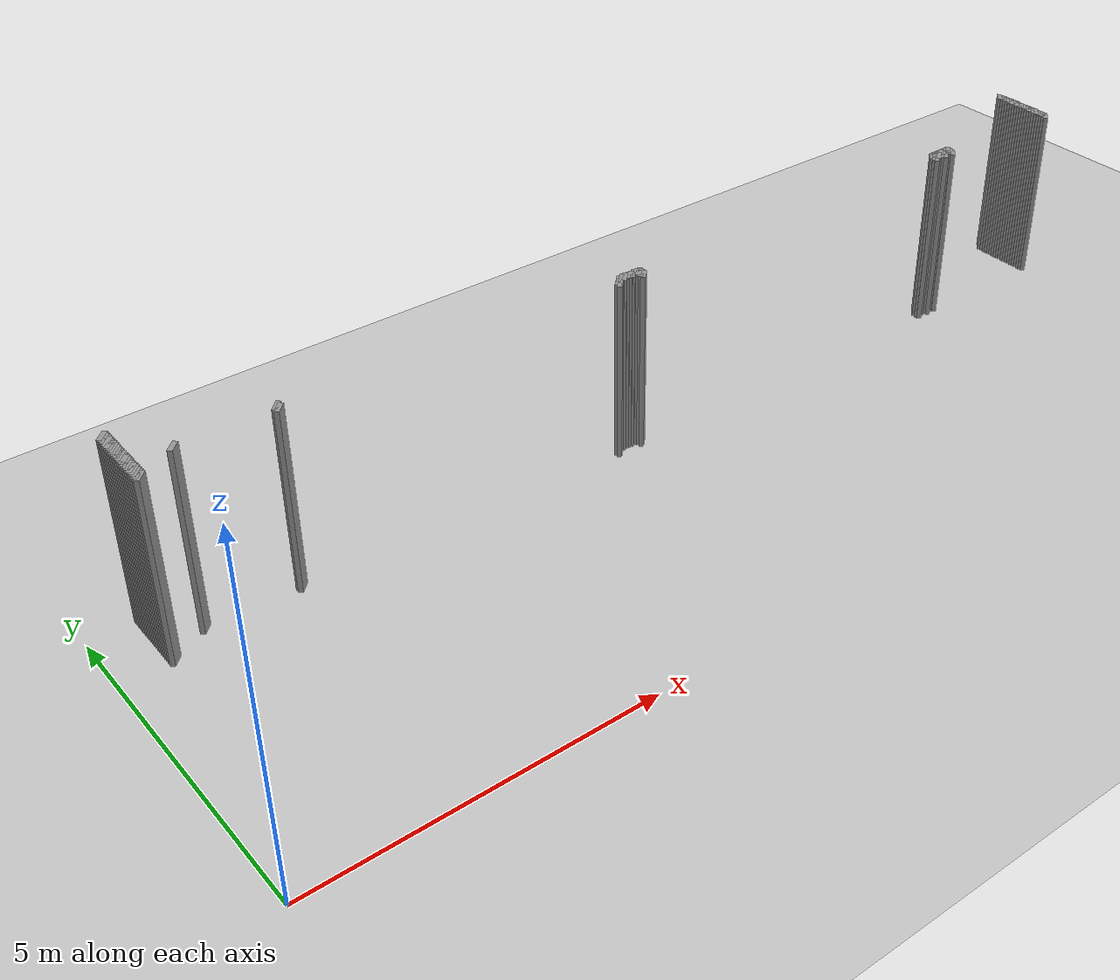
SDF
<sdf version="1.5">
 <world name="default">
  <include><uri>model://ground_plane</uri></include>
  <include><uri>model://sun</uri></include>
  <model name="grey_wall_2000">
   <static>1</static>
   <link name="link">
    <pose>0.75 5.1000000000000005  1.4 0 0 -0.7853981633974549</pose>
    <collision name="collision">
     <geometry><box><size>0.07071067811865529 .2  2.8</size></box></geometry>
    </collision>
    <visual name="visual">
     <cast_shadows>0</cast_shadows>
     <geometry><box><size>0.07071067811865529 .2  2.8</size></box></geometry>
     <material>
      <script>
       <uri>model://grey_wall/materials/scripts</uri>
       <uri>model://grey_wall/materials/textures</uri>
       <name>vrc/grey_wall</name>
      </script>
     </material>
    </visual>
   </link>
  </model>
  <model name="grey_wall_2001">
   <static>1</static>
   <link name="link">
    <pose>16.45 5.1000000000000005  1.4 0 0 -0.7853981633974838</pose>
    <collision name="collision">
     <geometry><box><size>0.07071067811865325 .2  2.8</size></box></geometry>
    </collision>
    <visual name="visual">
     <cast_shadows>0</cast_shadows>
     <geometry><box><size>0.07071067811865325 .2  2.8</size></box></geometry>
     <material>
      <script>
       <uri>model://grey_wall/materials/scripts</uri>
       <uri>model://grey_wall/materials/textures</uri>
       <name>vrc/grey_wall</name>
      </script>
     </material>
    </visual>
   </link>
  </model>
  <model name="grey_wall_2002">
   <static>1</static>
   <link name="link">
    <pose>0.75 5.050000000000001  1.4 0 0 -0.7853981633974549</pose>
    <collision name="collision">
     <geometry><box><size>0.07071067811865529 .2  2.8</size></box></geometry>
    </collision>
    <visual name="visual">
     <cast_shadows>0</cast_shadows>
     <geometry><box><size>0.07071067811865529 .2  2.8</size></box></geometry>
     <material>
      <script>
       <uri>model://grey_wall/materials/scripts</uri>
       <uri>model://grey_wall/materials/textures</uri>
       <name>vrc/grey_wall</name>
      </script>
     </material>
    </visual>
   </link>
  </model>
  <model name="grey_wall_2003">
   <static>1</static>
   <link name="link">
    <pose>16.45 5.050000000000001  1.4 0 0 -0.7853981633974838</pose>
    <collision name="collision">
     <geometry><box><size>0.07071067811865325 .2  2.8</size></box></geometry>
    </collision>
    <visual name="visual">
     <cast_shadows>0</cast_shadows>
     <geometry><box><size>0.07071067811865325 .2  2.8</size></box></geometry>
     <material>
      <script>
       <uri>model://grey_wall/materials/scripts</uri>
       <uri>model://grey_wall/materials/textures</uri>
       <name>vrc/grey_wall</name>
      </script>
     </material>
    </visual>
   </link>
  </model>
  <model name="grey_wall_2004">
   <static>1</static>
   <link name="link">
    <pose>0.75 5.0  1.4 0 0 -0.7853981633974549</pose>
    <collision name="collision">
     <geometry><box><size>0.07071067811865529 .2  2.8</size></box></geometry>
    </collision>
    <visual name="visual">
     <cast_shadows>0</cast_shadows>
     <geometry><box><size>0.07071067811865529 .2  2.8</size></box></geometry>
     <material>
      <script>
       <uri>model://grey_wall/materials/scripts</uri>
       <uri>model://grey_wall/materials/textures</uri>
       <name>vrc/grey_wall</name>
      </script>
     </material>
    </visual>
   </link>
  </model>
  <model name="grey_wall_2005">
   <static>1</static>
   <link name="link">
    <pose>16.45 5.0  1.4 0 0 -0.7853981633974838</pose>
    <collision name="collision">
     <geometry><box><size>0.07071067811865325 .2  2.8</size></box></geometry>
    </collision>
    <visual name="visual">
     <cast_shadows>0</cast_shadows>
     <geometry><box><size>0.07071067811865325 .2  2.8</size></box></geometry>
     <material>
      <script>
       <uri>model://grey_wall/materials/scripts</uri>
       <uri>model://grey_wall/materials/textures</uri>
       <name>vrc/grey_wall</name>
      </script>
     </material>
    </visual>
   </link>
  </model>
  <model name="grey_wall_2006">
   <static>1</static>
   <link name="link">
    <pose>0.75 4.95  1.4 0 0 -0.7853981633974549</pose>
    <collision name="collision">
     <geometry><box><size>0.07071067811865529 .2  2.8</size></box></geometry>
    </collision>
    <visual name="visual">
     <cast_shadows>0</cast_shadows>
     <geometry><box><size>0.07071067811865529 .2  2.8</size></box></geometry>
     <material>
      <script>
       <uri>model://grey_wall/materials/scripts</uri>
       <uri>model://grey_wall/materials/textures</uri>
       <name>vrc/grey_wall</name>
      </script>
     </material>
    </visual>
   </link>
  </model>
  <model name="grey_wall_2007">
   <static>1</static>
   <link name="link">
    <pose>16.45 4.95  1.4 0 0 -0.7853981633974838</pose>
    <collision name="collision">
     <geometry><box><size>0.07071067811865325 .2  2.8</size></box></geometry>
    </collision>
    <visual name="visual">
     <cast_shadows>0</cast_shadows>
     <geometry><box><size>0.07071067811865325 .2  2.8</size></box></geometry>
     <material>
      <script>
       <uri>model://grey_wall/materials/scripts</uri>
       <uri>model://grey_wall/materials/textures</uri>
       <name>vrc/grey_wall</name>
      </script>
     </material>
    </visual>
   </link>
  </model>
  <model name="grey_wall_2008">
   <static>1</static>
   <link name="link">
    <pose>0.75 4.9  1.4 0 0 -0.7853981633974549</pose>
    <collision name="collision">
     <geometry><box><size>0.07071067811865529 .2  2.8</size></box></geometry>
    </collision>
    <visual name="visual">
     <cast_shadows>0</cast_shadows>
     <geometry><box><size>0.07071067811865529 .2  2.8</size></box></geometry>
     <material>
      <script>
       <uri>model://grey_wall/materials/scripts</uri>
       <uri>model://grey_wall/materials/textures</uri>
       <name>vrc/grey_wall</name>
      </script>
     </material>
    </visual>
   </link>
  </model>
  <model name="grey_wall_2009">
   <static>1</static>
   <link name="link">
    <pose>16.45 4.9  1.4 0 0 -0.7853981633974838</pose>
    <collision name="collision">
     <geometry><box><size>0.07071067811865325 .2  2.8</size></box></geometry>
    </collision>
    <visual name="visual">
     <cast_shadows>0</cast_shadows>
     <geometry><box><size>0.07071067811865325 .2  2.8</size></box></geometry>
     <material>
      <script>
       <uri>model://grey_wall/materials/scripts</uri>
       <uri>model://grey_wall/materials/textures</uri>
       <name>vrc/grey_wall</name>
      </script>
     </material>
    </visual>
   </link>
  </model>
  <model name="grey_wall_2010">
   <static>1</static>
   <link name="link">
    <pose>0.75 4.8500000000000005  1.4 0 0 -0.7853981633974549</pose>
    <collision name="collision">
     <geometry><box><size>0.07071067811865529 .2  2.8</size></box></geometry>
    </collision>
    <visual name="visual">
     <cast_shadows>0</cast_shadows>
     <geometry><box><size>0.07071067811865529 .2  2.8</size></box></geometry>
     <material>
      <script>
       <uri>model://grey_wall/materials/scripts</uri>
       <uri>model://grey_wall/materials/textures</uri>
       <name>vrc/grey_wall</name>
      </script>
     </material>
    </visual>
   </link>
  </model>
  <model name="grey_wall_2011">
   <static>1</static>
   <link name="link">
    <pose>16.45 4.8500000000000005  1.4 0 0 -0.7853981633974838</pose>
    <collision name="collision">
     <geometry><box><size>0.07071067811865325 .2  2.8</size></box></geometry>
    </collision>
    <visual name="visual">
     <cast_shadows>0</cast_shadows>
     <geometry><box><size>0.07071067811865325 .2  2.8</size></box></geometry>
     <material>
      <script>
       <uri>model://grey_wall/materials/scripts</uri>
       <uri>model://grey_wall/materials/textures</uri>
       <name>vrc/grey_wall</name>
      </script>
     </material>
    </visual>
   </link>
  </model>
  <model name="grey_wall_2012">
   <static>1</static>
   <link name="link">
    <pose>0.75 4.800000000000001  1.4 0 0 -0.7853981633974549</pose>
    <collision name="collision">
     <geometry><box><size>0.07071067811865529 .2  2.8</size></box></geometry>
    </collision>
    <visual name="visual">
     <cast_shadows>0</cast_shadows>
     <geometry><box><size>0.07071067811865529 .2  2.8</size></box></geometry>
     <material>
      <script>
       <uri>model://grey_wall/materials/scripts</uri>
       <uri>model://grey_wall/materials/textures</uri>
       <name>vrc/grey_wall</name>
      </script>
     </material>
    </visual>
   </link>
  </model>
  <model name="grey_wall_2013">
   <static>1</static>
   <link name="link">
    <pose>16.45 4.800000000000001  1.4 0 0 -0.7853981633974838</pose>
    <collision name="collision">
     <geometry><box><size>0.07071067811865325 .2  2.8</size></box></geometry>
    </collision>
    <visual name="visual">
     <cast_shadows>0</cast_shadows>
     <geometry><box><size>0.07071067811865325 .2  2.8</size></box></geometry>
     <material>
      <script>
       <uri>model://grey_wall/materials/scripts</uri>
       <uri>model://grey_wall/materials/textures</uri>
       <name>vrc/grey_wall</name>
      </script>
     </material>
    </visual>
   </link>
  </model>
  <model name="grey_wall_2014">
   <static>1</static>
   <link name="link">
    <pose>0.75 4.75  1.4 0 0 -0.7853981633974549</pose>
    <collision name="collision">
     <geometry><box><size>0.07071067811865529 .2  2.8</size></box></geometry>
    </collision>
    <visual name="visual">
     <cast_shadows>0</cast_shadows>
     <geometry><box><size>0.07071067811865529 .2  2.8</size></box></geometry>
     <material>
      <script>
       <uri>model://grey_wall/materials/scripts</uri>
       <uri>model://grey_wall/materials/textures</uri>
       <name>vrc/grey_wall</name>
      </script>
     </material>
    </visual>
   </link>
  </model>
  <model name="grey_wall_2015">
   <static>1</static>
   <link name="link">
    <pose>16.45 4.75  1.4 0 0 -0.7853981633974838</pose>
    <collision name="collision">
     <geometry><box><size>0.07071067811865325 .2  2.8</size></box></geometry>
    </collision>
    <visual name="visual">
     <cast_shadows>0</cast_shadows>
     <geometry><box><size>0.07071067811865325 .2  2.8</size></box></geometry>
     <material>
      <script>
       <uri>model://grey_wall/materials/scripts</uri>
       <uri>model://grey_wall/materials/textures</uri>
       <name>vrc/grey_wall</name>
      </script>
     </material>
    </visual>
   </link>
  </model>
  <model name="grey_wall_2016">
   <static>1</static>
   <link name="link">
    <pose>0.75 4.7  1.4 0 0 -0.7853981633974549</pose>
    <collision name="collision">
     <geometry><box><size>0.07071067811865529 .2  2.8</size></box></geometry>
    </collision>
    <visual name="visual">
     <cast_shadows>0</cast_shadows>
     <geometry><box><size>0.07071067811865529 .2  2.8</size></box></geometry>
     <material>
      <script>
       <uri>model://grey_wall/materials/scripts</uri>
       <uri>model://grey_wall/materials/textures</uri>
       <name>vrc/grey_wall</name>
      </script>
     </material>
    </visual>
   </link>
  </model>
  <model name="grey_wall_2017">
   <static>1</static>
   <link name="link">
    <pose>16.45 4.7  1.4 0 0 -0.7853981633974838</pose>
    <collision name="collision">
     <geometry><box><size>0.07071067811865325 .2  2.8</size></box></geometry>
    </collision>
    <visual name="visual">
     <cast_shadows>0</cast_shadows>
     <geometry><box><size>0.07071067811865325 .2  2.8</size></box></geometry>
     <material>
      <script>
       <uri>model://grey_wall/materials/scripts</uri>
       <uri>model://grey_wall/materials/textures</uri>
       <name>vrc/grey_wall</name>
      </script>
     </material>
    </visual>
   </link>
  </model>
  <model name="grey_wall_2018">
   <static>1</static>
   <link name="link">
    <pose>0.75 4.65  1.4 0 0 -0.7853981633974549</pose>
    <collision name="collision">
     <geometry><box><size>0.07071067811865529 .2  2.8</size></box></geometry>
    </collision>
    <visual name="visual">
     <cast_shadows>0</cast_shadows>
     <geometry><box><size>0.07071067811865529 .2  2.8</size></box></geometry>
     <material>
      <script>
       <uri>model://grey_wall/materials/scripts</uri>
       <uri>model://grey_wall/materials/textures</uri>
       <name>vrc/grey_wall</name>
      </script>
     </material>
    </visual>
   </link>
  </model>
  <model name="grey_wall_2019">
   <static>1</static>
   <link name="link">
    <pose>16.45 4.65  1.4 0 0 -0.7853981633974838</pose>
    <collision name="collision">
     <geometry><box><size>0.07071067811865325 .2  2.8</size></box></geometry>
    </collision>
    <visual name="visual">
     <cast_shadows>0</cast_shadows>
     <geometry><box><size>0.07071067811865325 .2  2.8</size></box></geometry>
     <material>
      <script>
       <uri>model://grey_wall/materials/scripts</uri>
       <uri>model://grey_wall/materials/textures</uri>
       <name>vrc/grey_wall</name>
      </script>
     </material>
    </visual>
   </link>
  </model>
  <model name="grey_wall_2020">
   <static>1</static>
   <link name="link">
    <pose>0.75 4.6000000000000005  1.4 0 0 -0.7853981633974549</pose>
    <collision name="collision">
     <geometry><box><size>0.07071067811865529 .2  2.8</size></box></geometry>
    </collision>
    <visual name="visual">
     <cast_shadows>0</cast_shadows>
     <geometry><box><size>0.07071067811865529 .2  2.8</size></box></geometry>
     <material>
      <script>
       <uri>model://grey_wall/materials/scripts</uri>
       <uri>model://grey_wall/materials/textures</uri>
       <name>vrc/grey_wall</name>
      </script>
     </material>
    </visual>
   </link>
  </model>
  <model name="grey_wall_2021">
   <static>1</static>
   <link name="link">
    <pose>16.45 4.6000000000000005  1.4 0 0 -0.7853981633974838</pose>
    <collision name="collision">
     <geometry><box><size>0.07071067811865325 .2  2.8</size></box></geometry>
    </collision>
    <visual name="visual">
     <cast_shadows>0</cast_shadows>
     <geometry><box><size>0.07071067811865325 .2  2.8</size></box></geometry>
     <material>
      <script>
       <uri>model://grey_wall/materials/scripts</uri>
       <uri>model://grey_wall/materials/textures</uri>
       <name>vrc/grey_wall</name>
      </script>
     </material>
    </visual>
   </link>
  </model>
  <model name="grey_wall_2022">
   <static>1</static>
   <link name="link">
    <pose>0.75 4.55  1.4 0 0 -0.7853981633974549</pose>
    <collision name="collision">
     <geometry><box><size>0.07071067811865529 .2  2.8</size></box></geometry>
    </collision>
    <visual name="visual">
     <cast_shadows>0</cast_shadows>
     <geometry><box><size>0.07071067811865529 .2  2.8</size></box></geometry>
     <material>
      <script>
       <uri>model://grey_wall/materials/scripts</uri>
       <uri>model://grey_wall/materials/textures</uri>
       <name>vrc/grey_wall</name>
      </script>
     </material>
    </visual>
   </link>
  </model>
  <model name="grey_wall_2023">
   <static>1</static>
   <link name="link">
    <pose>16.45 4.55  1.4 0 0 -0.7853981633974838</pose>
    <collision name="collision">
     <geometry><box><size>0.07071067811865325 .2  2.8</size></box></geometry>
    </collision>
    <visual name="visual">
     <cast_shadows>0</cast_shadows>
     <geometry><box><size>0.07071067811865325 .2  2.8</size></box></geometry>
     <material>
      <script>
       <uri>model://grey_wall/materials/scripts</uri>
       <uri>model://grey_wall/materials/textures</uri>
       <name>vrc/grey_wall</name>
      </script>
     </material>
    </visual>
   </link>
  </model>
  <model name="grey_wall_2024">
   <static>1</static>
   <link name="link">
    <pose>0.75 4.5  1.4 0 0 -0.7853981633974549</pose>
    <collision name="collision">
     <geometry><box><size>0.07071067811865529 .2  2.8</size></box></geometry>
    </collision>
    <visual name="visual">
     <cast_shadows>0</cast_shadows>
     <geometry><box><size>0.07071067811865529 .2  2.8</size></box></geometry>
     <material>
      <script>
       <uri>model://grey_wall/materials/scripts</uri>
       <uri>model://grey_wall/materials/textures</uri>
       <name>vrc/grey_wall</name>
      </script>
     </material>
    </visual>
   </link>
  </model>
  <model name="grey_wall_2025">
   <static>1</static>
   <link name="link">
    <pose>16.45 4.5  1.4 0 0 -0.7853981633974838</pose>
    <collision name="collision">
     <geometry><box><size>0.07071067811865325 .2  2.8</size></box></geometry>
    </collision>
    <visual name="visual">
     <cast_shadows>0</cast_shadows>
     <geometry><box><size>0.07071067811865325 .2  2.8</size></box></geometry>
     <material>
      <script>
       <uri>model://grey_wall/materials/scripts</uri>
       <uri>model://grey_wall/materials/textures</uri>
       <name>vrc/grey_wall</name>
      </script>
     </material>
    </visual>
   </link>
  </model>
  <model name="grey_wall_2026">
   <static>1</static>
   <link name="link">
    <pose>0.75 4.45  1.4 0 0 -0.7853981633974549</pose>
    <collision name="collision">
     <geometry><box><size>0.07071067811865529 .2  2.8</size></box></geometry>
    </collision>
    <visual name="visual">
     <cast_shadows>0</cast_shadows>
     <geometry><box><size>0.07071067811865529 .2  2.8</size></box></geometry>
     <material>
      <script>
       <uri>model://grey_wall/materials/scripts</uri>
       <uri>model://grey_wall/materials/textures</uri>
       <name>vrc/grey_wall</name>
      </script>
     </material>
    </visual>
   </link>
  </model>
  <model name="grey_wall_2027">
   <static>1</static>
   <link name="link">
    <pose>16.45 4.45  1.4 0 0 -0.7853981633974838</pose>
    <collision name="collision">
     <geometry><box><size>0.07071067811865325 .2  2.8</size></box></geometry>
    </collision>
    <visual name="visual">
     <cast_shadows>0</cast_shadows>
     <geometry><box><size>0.07071067811865325 .2  2.8</size></box></geometry>
     <material>
      <script>
       <uri>model://grey_wall/materials/scripts</uri>
       <uri>model://grey_wall/materials/textures</uri>
       <name>vrc/grey_wall</name>
      </script>
     </material>
    </visual>
   </link>
  </model>
  <model name="grey_wall_2028">
   <static>1</static>
   <link name="link">
    <pose>0.75 4.4  1.4 0 0 -0.7853981633974549</pose>
    <collision name="collision">
     <geometry><box><size>0.07071067811865529 .2  2.8</size></box></geometry>
    </collision>
    <visual name="visual">
     <cast_shadows>0</cast_shadows>
     <geometry><box><size>0.07071067811865529 .2  2.8</size></box></geometry>
     <material>
      <script>
       <uri>model://grey_wall/materials/scripts</uri>
       <uri>model://grey_wall/materials/textures</uri>
       <name>vrc/grey_wall</name>
      </script>
     </material>
    </visual>
   </link>
  </model>
  <model name="grey_wall_2029">
   <static>1</static>
   <link name="link">
    <pose>1.3 4.4  1.4 0 0 -0.7853981633974572</pose>
    <collision name="collision">
     <geometry><box><size>0.07071067811865513 .2  2.8</size></box></geometry>
    </collision>
    <visual name="visual">
     <cast_shadows>0</cast_shadows>
     <geometry><box><size>0.07071067811865513 .2  2.8</size></box></geometry>
     <material>
      <script>
       <uri>model://grey_wall/materials/scripts</uri>
       <uri>model://grey_wall/materials/textures</uri>
       <name>vrc/grey_wall</name>
      </script>
     </material>
    </visual>
   </link>
  </model>
  <model name="grey_wall_2030">
   <static>1</static>
   <link name="link">
    <pose>2.6500000000000004 4.4  1.4 0 0 -0.7853981633974572</pose>
    <collision name="collision">
     <geometry><box><size>0.07071067811865513 .2  2.8</size></box></geometry>
    </collision>
    <visual name="visual">
     <cast_shadows>0</cast_shadows>
     <geometry><box><size>0.07071067811865513 .2  2.8</size></box></geometry>
     <material>
      <script>
       <uri>model://grey_wall/materials/scripts</uri>
       <uri>model://grey_wall/materials/textures</uri>
       <name>vrc/grey_wall</name>
      </script>
     </material>
    </visual>
   </link>
  </model>
  <model name="grey_wall_2031">
   <static>1</static>
   <link name="link">
    <pose>16.45 4.4  1.4 0 0 -0.7853981633974838</pose>
    <collision name="collision">
     <geometry><box><size>0.07071067811865325 .2  2.8</size></box></geometry>
    </collision>
    <visual name="visual">
     <cast_shadows>0</cast_shadows>
     <geometry><box><size>0.07071067811865325 .2  2.8</size></box></geometry>
     <material>
      <script>
       <uri>model://grey_wall/materials/scripts</uri>
       <uri>model://grey_wall/materials/textures</uri>
       <name>vrc/grey_wall</name>
      </script>
     </material>
    </visual>
   </link>
  </model>
  <model name="grey_wall_2032">
   <static>1</static>
   <link name="link">
    <pose>0.75 4.3500000000000005  1.4 0 0 -0.7853981633974549</pose>
    <collision name="collision">
     <geometry><box><size>0.07071067811865529 .2  2.8</size></box></geometry>
    </collision>
    <visual name="visual">
     <cast_shadows>0</cast_shadows>
     <geometry><box><size>0.07071067811865529 .2  2.8</size></box></geometry>
     <material>
      <script>
       <uri>model://grey_wall/materials/scripts</uri>
       <uri>model://grey_wall/materials/textures</uri>
       <name>vrc/grey_wall</name>
      </script>
     </material>
    </visual>
   </link>
  </model>
  <model name="grey_wall_2033">
   <static>1</static>
   <link name="link">
    <pose>2.6500000000000004 4.3500000000000005  1.4 0 0 -0.7853981633974572</pose>
    <collision name="collision">
     <geometry><box><size>0.07071067811865513 .2  2.8</size></box></geometry>
    </collision>
    <visual name="visual">
     <cast_shadows>0</cast_shadows>
     <geometry><box><size>0.07071067811865513 .2  2.8</size></box></geometry>
     <material>
      <script>
       <uri>model://grey_wall/materials/scripts</uri>
       <uri>model://grey_wall/materials/textures</uri>
       <name>vrc/grey_wall</name>
      </script>
     </material>
    </visual>
   </link>
  </model>
  <model name="grey_wall_2034">
   <static>1</static>
   <link name="link">
    <pose>16.45 4.3500000000000005  1.4 0 0 -0.7853981633974838</pose>
    <collision name="collision">
     <geometry><box><size>0.07071067811865325 .2  2.8</size></box></geometry>
    </collision>
    <visual name="visual">
     <cast_shadows>0</cast_shadows>
     <geometry><box><size>0.07071067811865325 .2  2.8</size></box></geometry>
     <material>
      <script>
       <uri>model://grey_wall/materials/scripts</uri>
       <uri>model://grey_wall/materials/textures</uri>
       <name>vrc/grey_wall</name>
      </script>
     </material>
    </visual>
   </link>
  </model>
  <model name="grey_wall_2035">
   <static>1</static>
   <link name="link">
    <pose>0.75 4.3  1.4 0 0 -0.7853981633974549</pose>
    <collision name="collision">
     <geometry><box><size>0.07071067811865529 .2  2.8</size></box></geometry>
    </collision>
    <visual name="visual">
     <cast_shadows>0</cast_shadows>
     <geometry><box><size>0.07071067811865529 .2  2.8</size></box></geometry>
     <material>
      <script>
       <uri>model://grey_wall/materials/scripts</uri>
       <uri>model://grey_wall/materials/textures</uri>
       <name>vrc/grey_wall</name>
      </script>
     </material>
    </visual>
   </link>
  </model>
  <model name="grey_wall_2036">
   <static>1</static>
   <link name="link">
    <pose>16.45 4.3  1.4 0 0 -0.7853981633974838</pose>
    <collision name="collision">
     <geometry><box><size>0.07071067811865325 .2  2.8</size></box></geometry>
    </collision>
    <visual name="visual">
     <cast_shadows>0</cast_shadows>
     <geometry><box><size>0.07071067811865325 .2  2.8</size></box></geometry>
     <material>
      <script>
       <uri>model://grey_wall/materials/scripts</uri>
       <uri>model://grey_wall/materials/textures</uri>
       <name>vrc/grey_wall</name>
      </script>
     </material>
    </visual>
   </link>
  </model>
  <model name="grey_wall_2037">
   <static>1</static>
   <link name="link">
    <pose>0.75 4.25  1.4 0 0 -0.7853981633974549</pose>
    <collision name="collision">
     <geometry><box><size>0.07071067811865529 .2  2.8</size></box></geometry>
    </collision>
    <visual name="visual">
     <cast_shadows>0</cast_shadows>
     <geometry><box><size>0.07071067811865529 .2  2.8</size></box></geometry>
     <material>
      <script>
       <uri>model://grey_wall/materials/scripts</uri>
       <uri>model://grey_wall/materials/textures</uri>
       <name>vrc/grey_wall</name>
      </script>
     </material>
    </visual>
   </link>
  </model>
  <model name="grey_wall_2038">
   <static>1</static>
   <link name="link">
    <pose>7.75 4.25  1.4 0 0 -0.7853981633974483</pose>
    <collision name="collision">
     <geometry><box><size>0.07071067811865576 .2  2.8</size></box></geometry>
    </collision>
    <visual name="visual">
     <cast_shadows>0</cast_shadows>
     <geometry><box><size>0.07071067811865576 .2  2.8</size></box></geometry>
     <material>
      <script>
       <uri>model://grey_wall/materials/scripts</uri>
       <uri>model://grey_wall/materials/textures</uri>
       <name>vrc/grey_wall</name>
      </script>
     </material>
    </visual>
   </link>
  </model>
  <model name="grey_wall_2039">
   <static>1</static>
   <link name="link">
    <pose>7.800000000000001 4.25  1.4 0 0 -0.7853981633974483</pose>
    <collision name="collision">
     <geometry><box><size>0.07071067811865576 .2  2.8</size></box></geometry>
    </collision>
    <visual name="visual">
     <cast_shadows>0</cast_shadows>
     <geometry><box><size>0.07071067811865576 .2  2.8</size></box></geometry>
     <material>
      <script>
       <uri>model://grey_wall/materials/scripts</uri>
       <uri>model://grey_wall/materials/textures</uri>
       <name>vrc/grey_wall</name>
      </script>
     </material>
    </visual>
   </link>
  </model>
  <model name="grey_wall_2040">
   <static>1</static>
   <link name="link">
    <pose>7.8500000000000005 4.25  1.4 0 0 -0.7853981633974483</pose>
    <collision name="collision">
     <geometry><box><size>0.07071067811865576 .2  2.8</size></box></geometry>
    </collision>
    <visual name="visual">
     <cast_shadows>0</cast_shadows>
     <geometry><box><size>0.07071067811865576 .2  2.8</size></box></geometry>
     <material>
      <script>
       <uri>model://grey_wall/materials/scripts</uri>
       <uri>model://grey_wall/materials/textures</uri>
       <name>vrc/grey_wall</name>
      </script>
     </material>
    </visual>
   </link>
  </model>
  <model name="grey_wall_2041">
   <static>1</static>
   <link name="link">
    <pose>7.9 4.25  1.4 0 0 -0.7853981633974483</pose>
    <collision name="collision">
     <geometry><box><size>0.07071067811865576 .2  2.8</size></box></geometry>
    </collision>
    <visual name="visual">
     <cast_shadows>0</cast_shadows>
     <geometry><box><size>0.07071067811865576 .2  2.8</size></box></geometry>
     <material>
      <script>
       <uri>model://grey_wall/materials/scripts</uri>
       <uri>model://grey_wall/materials/textures</uri>
       <name>vrc/grey_wall</name>
      </script>
     </material>
    </visual>
   </link>
  </model>
  <model name="grey_wall_2042">
   <static>1</static>
   <link name="link">
    <pose>7.95 4.25  1.4 0 0 -0.7853981633974483</pose>
    <collision name="collision">
     <geometry><box><size>0.07071067811865576 .2  2.8</size></box></geometry>
    </collision>
    <visual name="visual">
     <cast_shadows>0</cast_shadows>
     <geometry><box><size>0.07071067811865576 .2  2.8</size></box></geometry>
     <material>
      <script>
       <uri>model://grey_wall/materials/scripts</uri>
       <uri>model://grey_wall/materials/textures</uri>
       <name>vrc/grey_wall</name>
      </script>
     </material>
    </visual>
   </link>
  </model>
  <model name="grey_wall_2043">
   <static>1</static>
   <link name="link">
    <pose>8.0 4.25  1.4 0 0 -0.7853981633974483</pose>
    <collision name="collision">
     <geometry><box><size>0.07071067811865576 .2  2.8</size></box></geometry>
    </collision>
    <visual name="visual">
     <cast_shadows>0</cast_shadows>
     <geometry><box><size>0.07071067811865576 .2  2.8</size></box></geometry>
     <material>
      <script>
       <uri>model://grey_wall/materials/scripts</uri>
       <uri>model://grey_wall/materials/textures</uri>
       <name>vrc/grey_wall</name>
      </script>
     </material>
    </visual>
   </link>
  </model>
  <model name="grey_wall_2044">
   <static>1</static>
   <link name="link">
    <pose>8.05 4.25  1.4 0 0 -0.7853981633974483</pose>
    <collision name="collision">
     <geometry><box><size>0.07071067811865576 .2  2.8</size></box></geometry>
    </collision>
    <visual name="visual">
     <cast_shadows>0</cast_shadows>
     <geometry><box><size>0.07071067811865576 .2  2.8</size></box></geometry>
     <material>
      <script>
       <uri>model://grey_wall/materials/scripts</uri>
       <uri>model://grey_wall/materials/textures</uri>
       <name>vrc/grey_wall</name>
      </script>
     </material>
    </visual>
   </link>
  </model>
  <model name="grey_wall_2045">
   <static>1</static>
   <link name="link">
    <pose>8.1 4.25  1.4 0 0 -0.7853981633974483</pose>
    <collision name="collision">
     <geometry><box><size>0.07071067811865576 .2  2.8</size></box></geometry>
    </collision>
    <visual name="visual">
     <cast_shadows>0</cast_shadows>
     <geometry><box><size>0.07071067811865576 .2  2.8</size></box></geometry>
     <material>
      <script>
       <uri>model://grey_wall/materials/scripts</uri>
       <uri>model://grey_wall/materials/textures</uri>
       <name>vrc/grey_wall</name>
      </script>
     </material>
    </visual>
   </link>
  </model>
  <model name="grey_wall_2046">
   <static>1</static>
   <link name="link">
    <pose>13.9 4.25  1.4 0 0 -0.7853981633974483</pose>
    <collision name="collision">
     <geometry><box><size>0.07071067811865576 .2  2.8</size></box></geometry>
    </collision>
    <visual name="visual">
     <cast_shadows>0</cast_shadows>
     <geometry><box><size>0.07071067811865576 .2  2.8</size></box></geometry>
     <material>
      <script>
       <uri>model://grey_wall/materials/scripts</uri>
       <uri>model://grey_wall/materials/textures</uri>
       <name>vrc/grey_wall</name>
      </script>
     </material>
    </visual>
   </link>
  </model>
  <model name="grey_wall_2047">
   <static>1</static>
   <link name="link">
    <pose>13.950000000000001 4.25  1.4 0 0 -0.7853981633974483</pose>
    <collision name="collision">
     <geometry><box><size>0.07071067811865576 .2  2.8</size></box></geometry>
    </collision>
    <visual name="visual">
     <cast_shadows>0</cast_shadows>
     <geometry><box><size>0.07071067811865576 .2  2.8</size></box></geometry>
     <material>
      <script>
       <uri>model://grey_wall/materials/scripts</uri>
       <uri>model://grey_wall/materials/textures</uri>
       <name>vrc/grey_wall</name>
      </script>
     </material>
    </visual>
   </link>
  </model>
  <model name="grey_wall_2048">
   <static>1</static>
   <link name="link">
    <pose>14.0 4.25  1.4 0 0 -0.7853981633974483</pose>
    <collision name="collision">
     <geometry><box><size>0.07071067811865576 .2  2.8</size></box></geometry>
    </collision>
    <visual name="visual">
     <cast_shadows>0</cast_shadows>
     <geometry><box><size>0.07071067811865576 .2  2.8</size></box></geometry>
     <material>
      <script>
       <uri>model://grey_wall/materials/scripts</uri>
       <uri>model://grey_wall/materials/textures</uri>
       <name>vrc/grey_wall</name>
      </script>
     </material>
    </visual>
   </link>
  </model>
  <model name="grey_wall_2049">
   <static>1</static>
   <link name="link">
    <pose>14.05 4.25  1.4 0 0 -0.7853981633974483</pose>
    <collision name="collision">
     <geometry><box><size>0.07071067811865576 .2  2.8</size></box></geometry>
    </collision>
    <visual name="visual">
     <cast_shadows>0</cast_shadows>
     <geometry><box><size>0.07071067811865576 .2  2.8</size></box></geometry>
     <material>
      <script>
       <uri>model://grey_wall/materials/scripts</uri>
       <uri>model://grey_wall/materials/textures</uri>
       <name>vrc/grey_wall</name>
      </script>
     </material>
    </visual>
   </link>
  </model>
  <model name="grey_wall_2050">
   <static>1</static>
   <link name="link">
    <pose>14.100000000000001 4.25  1.4 0 0 -0.7853981633974483</pose>
    <collision name="collision">
     <geometry><box><size>0.07071067811865576 .2  2.8</size></box></geometry>
    </collision>
    <visual name="visual">
     <cast_shadows>0</cast_shadows>
     <geometry><box><size>0.07071067811865576 .2  2.8</size></box></geometry>
     <material>
      <script>
       <uri>model://grey_wall/materials/scripts</uri>
       <uri>model://grey_wall/materials/textures</uri>
       <name>vrc/grey_wall</name>
      </script>
     </material>
    </visual>
   </link>
  </model>
  <model name="grey_wall_2051">
   <static>1</static>
   <link name="link">
    <pose>14.15 4.25  1.4 0 0 -0.7853981633974483</pose>
    <collision name="collision">
     <geometry><box><size>0.07071067811865576 .2  2.8</size></box></geometry>
    </collision>
    <visual name="visual">
     <cast_shadows>0</cast_shadows>
     <geometry><box><size>0.07071067811865576 .2  2.8</size></box></geometry>
     <material>
      <script>
       <uri>model://grey_wall/materials/scripts</uri>
       <uri>model://grey_wall/materials/textures</uri>
       <name>vrc/grey_wall</name>
      </script>
     </material>
    </visual>
   </link>
  </model>
  <model name="grey_wall_2052">
   <static>1</static>
   <link name="link">
    <pose>14.200000000000001 4.25  1.4 0 0 -0.7853981633974483</pose>
    <collision name="collision">
     <geometry><box><size>0.07071067811865576 .2  2.8</size></box></geometry>
    </collision>
    <visual name="visual">
     <cast_shadows>0</cast_shadows>
     <geometry><box><size>0.07071067811865576 .2  2.8</size></box></geometry>
     <material>
      <script>
       <uri>model://grey_wall/materials/scripts</uri>
       <uri>model://grey_wall/materials/textures</uri>
       <name>vrc/grey_wall</name>
      </script>
     </material>
    </visual>
   </link>
  </model>
  <model name="grey_wall_2053">
   <static>1</static>
   <link name="link">
    <pose>14.25 4.25  1.4 0 0 -0.7853981633974483</pose>
    <collision name="collision">
     <geometry><box><size>0.07071067811865576 .2  2.8</size></box></geometry>
    </collision>
    <visual name="visual">
     <cast_shadows>0</cast_shadows>
     <geometry><box><size>0.07071067811865576 .2  2.8</size></box></geometry>
     <material>
      <script>
       <uri>model://grey_wall/materials/scripts</uri>
       <uri>model://grey_wall/materials/textures</uri>
       <name>vrc/grey_wall</name>
      </script>
     </material>
    </visual>
   </link>
  </model>
  <model name="grey_wall_2054">
   <static>1</static>
   <link name="link">
    <pose>16.45 4.25  1.4 0 0 -0.7853981633974838</pose>
    <collision name="collision">
     <geometry><box><size>0.07071067811865325 .2  2.8</size></box></geometry>
    </collision>
    <visual name="visual">
     <cast_shadows>0</cast_shadows>
     <geometry><box><size>0.07071067811865325 .2  2.8</size></box></geometry>
     <material>
      <script>
       <uri>model://grey_wall/materials/scripts</uri>
       <uri>model://grey_wall/materials/textures</uri>
       <name>vrc/grey_wall</name>
      </script>
     </material>
    </visual>
   </link>
  </model>
  <model name="grey_wall_2055">
   <static>1</static>
   <link name="link">
    <pose>0.75 4.2  1.4 0 0 -0.7853981633974549</pose>
    <collision name="collision">
     <geometry><box><size>0.07071067811865529 .2  2.8</size></box></geometry>
    </collision>
    <visual name="visual">
     <cast_shadows>0</cast_shadows>
     <geometry><box><size>0.07071067811865529 .2  2.8</size></box></geometry>
     <material>
      <script>
       <uri>model://grey_wall/materials/scripts</uri>
       <uri>model://grey_wall/materials/textures</uri>
       <name>vrc/grey_wall</name>
      </script>
     </material>
    </visual>
   </link>
  </model>
  <model name="grey_wall_2056">
   <static>1</static>
   <link name="link">
    <pose>7.7 4.2  1.4 0 0 -0.7853981633974483</pose>
    <collision name="collision">
     <geometry><box><size>0.07071067811865576 .2  2.8</size></box></geometry>
    </collision>
    <visual name="visual">
     <cast_shadows>0</cast_shadows>
     <geometry><box><size>0.07071067811865576 .2  2.8</size></box></geometry>
     <material>
      <script>
       <uri>model://grey_wall/materials/scripts</uri>
       <uri>model://grey_wall/materials/textures</uri>
       <name>vrc/grey_wall</name>
      </script>
     </material>
    </visual>
   </link>
  </model>
  <model name="grey_wall_2057">
   <static>1</static>
   <link name="link">
    <pose>7.75 4.2  1.4 0 0 -0.7853981633974483</pose>
    <collision name="collision">
     <geometry><box><size>0.07071067811865576 .2  2.8</size></box></geometry>
    </collision>
    <visual name="visual">
     <cast_shadows>0</cast_shadows>
     <geometry><box><size>0.07071067811865576 .2  2.8</size></box></geometry>
     <material>
      <script>
       <uri>model://grey_wall/materials/scripts</uri>
       <uri>model://grey_wall/materials/textures</uri>
       <name>vrc/grey_wall</name>
      </script>
     </material>
    </visual>
   </link>
  </model>
  <model name="grey_wall_2058">
   <static>1</static>
   <link name="link">
    <pose>8.1 4.2  1.4 0 0 -0.7853981633974483</pose>
    <collision name="collision">
     <geometry><box><size>0.07071067811865576 .2  2.8</size></box></geometry>
    </collision>
    <visual name="visual">
     <cast_shadows>0</cast_shadows>
     <geometry><box><size>0.07071067811865576 .2  2.8</size></box></geometry>
     <material>
      <script>
       <uri>model://grey_wall/materials/scripts</uri>
       <uri>model://grey_wall/materials/textures</uri>
       <name>vrc/grey_wall</name>
      </script>
     </material>
    </visual>
   </link>
  </model>
  <model name="grey_wall_2059">
   <static>1</static>
   <link name="link">
    <pose>13.9 4.2  1.4 0 0 -0.7853981633974483</pose>
    <collision name="collision">
     <geometry><box><size>0.07071067811865576 .2  2.8</size></box></geometry>
    </collision>
    <visual name="visual">
     <cast_shadows>0</cast_shadows>
     <geometry><box><size>0.07071067811865576 .2  2.8</size></box></geometry>
     <material>
      <script>
       <uri>model://grey_wall/materials/scripts</uri>
       <uri>model://grey_wall/materials/textures</uri>
       <name>vrc/grey_wall</name>
      </script>
     </material>
    </visual>
   </link>
  </model>
  <model name="grey_wall_2060">
   <static>1</static>
   <link name="link">
    <pose>13.950000000000001 4.2  1.4 0 0 -0.7853981633974483</pose>
    <collision name="collision">
     <geometry><box><size>0.07071067811865576 .2  2.8</size></box></geometry>
    </collision>
    <visual name="visual">
     <cast_shadows>0</cast_shadows>
     <geometry><box><size>0.07071067811865576 .2  2.8</size></box></geometry>
     <material>
      <script>
       <uri>model://grey_wall/materials/scripts</uri>
       <uri>model://grey_wall/materials/textures</uri>
       <name>vrc/grey_wall</name>
      </script>
     </material>
    </visual>
   </link>
  </model>
  <model name="grey_wall_2061">
   <static>1</static>
   <link name="link">
    <pose>14.0 4.2  1.4 0 0 -0.7853981633974483</pose>
    <collision name="collision">
     <geometry><box><size>0.07071067811865576 .2  2.8</size></box></geometry>
    </collision>
    <visual name="visual">
     <cast_shadows>0</cast_shadows>
     <geometry><box><size>0.07071067811865576 .2  2.8</size></box></geometry>
     <material>
      <script>
       <uri>model://grey_wall/materials/scripts</uri>
       <uri>model://grey_wall/materials/textures</uri>
       <name>vrc/grey_wall</name>
      </script>
     </material>
    </visual>
   </link>
  </model>
  <model name="grey_wall_2062">
   <static>1</static>
   <link name="link">
    <pose>14.05 4.2  1.4 0 0 -0.7853981633974483</pose>
    <collision name="collision">
     <geometry><box><size>0.07071067811865576 .2  2.8</size></box></geometry>
    </collision>
    <visual name="visual">
     <cast_shadows>0</cast_shadows>
     <geometry><box><size>0.07071067811865576 .2  2.8</size></box></geometry>
     <material>
      <script>
       <uri>model://grey_wall/materials/scripts</uri>
       <uri>model://grey_wall/materials/textures</uri>
       <name>vrc/grey_wall</name>
      </script>
     </material>
    </visual>
   </link>
  </model>
  <model name="grey_wall_2063">
   <static>1</static>
   <link name="link">
    <pose>14.100000000000001 4.2  1.4 0 0 -0.7853981633974483</pose>
    <collision name="collision">
     <geometry><box><size>0.07071067811865576 .2  2.8</size></box></geometry>
    </collision>
    <visual name="visual">
     <cast_shadows>0</cast_shadows>
     <geometry><box><size>0.07071067811865576 .2  2.8</size></box></geometry>
     <material>
      <script>
       <uri>model://grey_wall/materials/scripts</uri>
       <uri>model://grey_wall/materials/textures</uri>
       <name>vrc/grey_wall</name>
      </script>
     </material>
    </visual>
   </link>
  </model>
  <model name="grey_wall_2064">
   <static>1</static>
   <link name="link">
    <pose>14.25 4.2  1.4 0 0 -0.7853981633974483</pose>
    <collision name="collision">
     <geometry><box><size>0.07071067811865576 .2  2.8</size></box></geometry>
    </collision>
    <visual name="visual">
     <cast_shadows>0</cast_shadows>
     <geometry><box><size>0.07071067811865576 .2  2.8</size></box></geometry>
     <material>
      <script>
       <uri>model://grey_wall/materials/scripts</uri>
       <uri>model://grey_wall/materials/textures</uri>
       <name>vrc/grey_wall</name>
      </script>
     </material>
    </visual>
   </link>
  </model>
  <model name="grey_wall_2065">
   <static>1</static>
   <link name="link">
    <pose>16.45 4.2  1.4 0 0 -0.7853981633974838</pose>
    <collision name="collision">
     <geometry><box><size>0.07071067811865325 .2  2.8</size></box></geometry>
    </collision>
    <visual name="visual">
     <cast_shadows>0</cast_shadows>
     <geometry><box><size>0.07071067811865325 .2  2.8</size></box></geometry>
     <material>
      <script>
       <uri>model://grey_wall/materials/scripts</uri>
       <uri>model://grey_wall/materials/textures</uri>
       <name>vrc/grey_wall</name>
      </script>
     </material>
    </visual>
   </link>
  </model>
  <model name="grey_wall_2066">
   <static>1</static>
   <link name="link">
    <pose>0.75 4.15  1.4 0 0 -0.7853981633974549</pose>
    <collision name="collision">
     <geometry><box><size>0.07071067811865529 .2  2.8</size></box></geometry>
    </collision>
    <visual name="visual">
     <cast_shadows>0</cast_shadows>
     <geometry><box><size>0.07071067811865529 .2  2.8</size></box></geometry>
     <material>
      <script>
       <uri>model://grey_wall/materials/scripts</uri>
       <uri>model://grey_wall/materials/textures</uri>
       <name>vrc/grey_wall</name>
      </script>
     </material>
    </visual>
   </link>
  </model>
  <model name="grey_wall_2067">
   <static>1</static>
   <link name="link">
    <pose>7.7 4.15  1.4 0 0 -0.7853981633974483</pose>
    <collision name="collision">
     <geometry><box><size>0.07071067811865576 .2  2.8</size></box></geometry>
    </collision>
    <visual name="visual">
     <cast_shadows>0</cast_shadows>
     <geometry><box><size>0.07071067811865576 .2  2.8</size></box></geometry>
     <material>
      <script>
       <uri>model://grey_wall/materials/scripts</uri>
       <uri>model://grey_wall/materials/textures</uri>
       <name>vrc/grey_wall</name>
      </script>
     </material>
    </visual>
   </link>
  </model>
  <model name="grey_wall_2068">
   <static>1</static>
   <link name="link">
    <pose>8.1 4.15  1.4 0 0 -0.7853981633974483</pose>
    <collision name="collision">
     <geometry><box><size>0.07071067811865576 .2  2.8</size></box></geometry>
    </collision>
    <visual name="visual">
     <cast_shadows>0</cast_shadows>
     <geometry><box><size>0.07071067811865576 .2  2.8</size></box></geometry>
     <material>
      <script>
       <uri>model://grey_wall/materials/scripts</uri>
       <uri>model://grey_wall/materials/textures</uri>
       <name>vrc/grey_wall</name>
      </script>
     </material>
    </visual>
   </link>
  </model>
  <model name="grey_wall_2069">
   <static>1</static>
   <link name="link">
    <pose>13.9 4.15  1.4 0 0 -0.7853981633974483</pose>
    <collision name="collision">
     <geometry><box><size>0.07071067811865576 .2  2.8</size></box></geometry>
    </collision>
    <visual name="visual">
     <cast_shadows>0</cast_shadows>
     <geometry><box><size>0.07071067811865576 .2  2.8</size></box></geometry>
     <material>
      <script>
       <uri>model://grey_wall/materials/scripts</uri>
       <uri>model://grey_wall/materials/textures</uri>
       <name>vrc/grey_wall</name>
      </script>
     </material>
    </visual>
   </link>
  </model>
  <model name="grey_wall_2070">
   <static>1</static>
   <link name="link">
    <pose>14.100000000000001 4.15  1.4 0 0 -0.7853981633974483</pose>
    <collision name="collision">
     <geometry><box><size>0.07071067811865576 .2  2.8</size></box></geometry>
    </collision>
    <visual name="visual">
     <cast_shadows>0</cast_shadows>
     <geometry><box><size>0.07071067811865576 .2  2.8</size></box></geometry>
     <material>
      <script>
       <uri>model://grey_wall/materials/scripts</uri>
       <uri>model://grey_wall/materials/textures</uri>
       <name>vrc/grey_wall</name>
      </script>
     </material>
    </visual>
   </link>
  </model>
  <model name="grey_wall_2071">
   <static>1</static>
   <link name="link">
    <pose>14.25 4.15  1.4 0 0 -0.7853981633974483</pose>
    <collision name="collision">
     <geometry><box><size>0.07071067811865576 .2  2.8</size></box></geometry>
    </collision>
    <visual name="visual">
     <cast_shadows>0</cast_shadows>
     <geometry><box><size>0.07071067811865576 .2  2.8</size></box></geometry>
     <material>
      <script>
       <uri>model://grey_wall/materials/scripts</uri>
       <uri>model://grey_wall/materials/textures</uri>
       <name>vrc/grey_wall</name>
      </script>
     </material>
    </visual>
   </link>
  </model>
  <model name="grey_wall_2072">
   <static>1</static>
   <link name="link">
    <pose>16.45 4.15  1.4 0 0 -0.7853981633974838</pose>
    <collision name="collision">
     <geometry><box><size>0.07071067811865325 .2  2.8</size></box></geometry>
    </collision>
    <visual name="visual">
     <cast_shadows>0</cast_shadows>
     <geometry><box><size>0.07071067811865325 .2  2.8</size></box></geometry>
     <material>
      <script>
       <uri>model://grey_wall/materials/scripts</uri>
       <uri>model://grey_wall/materials/textures</uri>
       <name>vrc/grey_wall</name>
      </script>
     </material>
    </visual>
   </link>
  </model>
  <model name="grey_wall_2073">
   <static>1</static>
   <link name="link">
    <pose>0.75 4.1000000000000005  1.4 0 0 -0.7853981633974549</pose>
    <collision name="collision">
     <geometry><box><size>0.07071067811865529 .2  2.8</size></box></geometry>
    </collision>
    <visual name="visual">
     <cast_shadows>0</cast_shadows>
     <geometry><box><size>0.07071067811865529 .2  2.8</size></box></geometry>
     <material>
      <script>
       <uri>model://grey_wall/materials/scripts</uri>
       <uri>model://grey_wall/materials/textures</uri>
       <name>vrc/grey_wall</name>
      </script>
     </material>
    </visual>
   </link>
  </model>
 </world>
</sdf>
